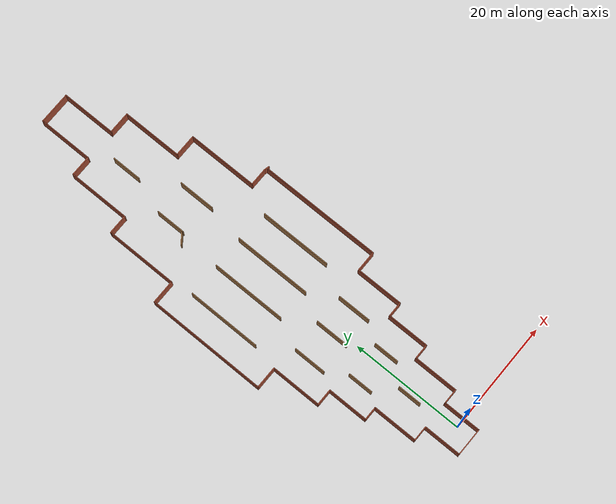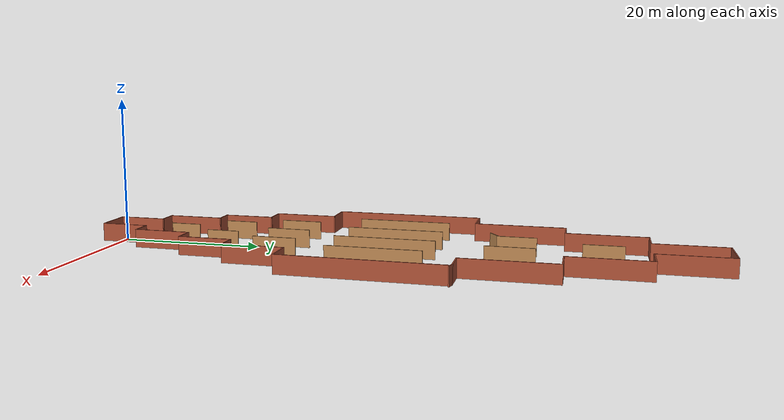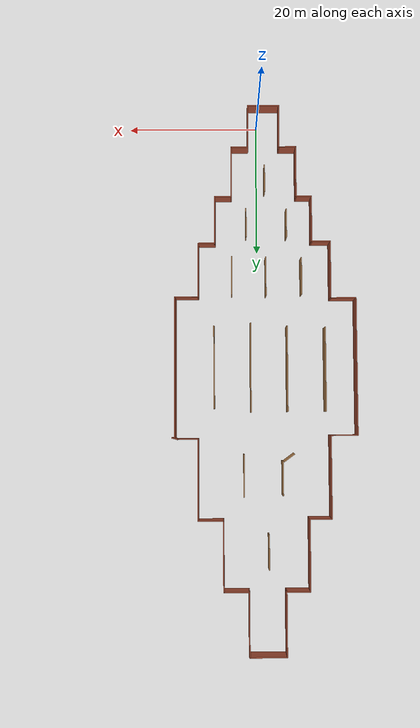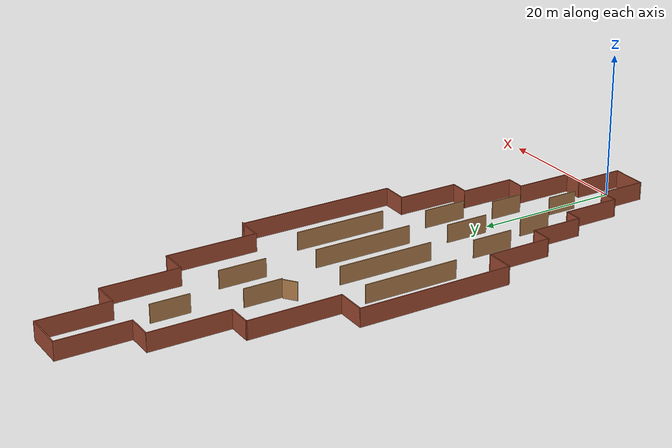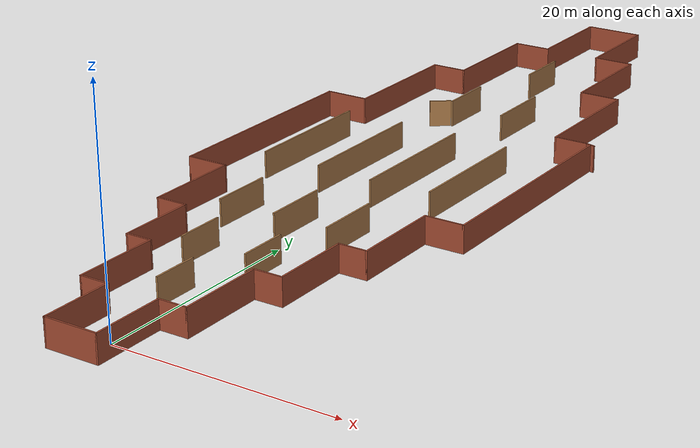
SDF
<?xml version='1.0'?>
<sdf version='1.6'>
  <model name='test_maze'>
    <pose frame=''>-0.979101 39.4339 0 0 -0 0</pose>
    <link name='Wall_102'>
      <collision name='Wall_102_Collision'>
        <geometry>
          <box>
            <size>4.25 0.15 2.5</size>
          </box>
        </geometry>
        <pose frame=''>0 0 1.25 0 -0 0</pose>
      </collision>
      <visual name='Wall_102_Visual'>
        <pose frame=''>0 0 1.25 0 -0 0</pose>
        <geometry>
          <box>
            <size>4.25 0.15 2.5</size>
          </box>
        </geometry>
        <material>
          <script>
            <uri>file://media/materials/scripts/gazebo.material</uri>
            <name>Gazebo/Wood</name>
          </script>
          <ambient>1 1 1 1</ambient>
        </material>
        <meta>
          <layer>0</layer>
        </meta>
      </visual>
      <pose frame=''>-0.206581 -30.7485 0 0 -0 -1.5708</pose>
    </link>
    <link name='Wall_104'>
      <collision name='Wall_104_Collision'>
        <geometry>
          <box>
            <size>4.5 0.15 2.5</size>
          </box>
        </geometry>
        <pose frame=''>0 0 1.25 0 -0 0</pose>
      </collision>
      <visual name='Wall_104_Visual'>
        <pose frame=''>0 0 1.25 0 -0 0</pose>
        <geometry>
          <box>
            <size>4.5 0.15 2.5</size>
          </box>
        </geometry>
        <material>
          <script>
            <uri>file://media/materials/scripts/gazebo.material</uri>
            <name>Gazebo/Wood</name>
          </script>
          <ambient>1 1 1 1</ambient>
        </material>
        <meta>
          <layer>0</layer>
        </meta>
      </visual>
      <pose frame=''>-3.54557 -23.662 0 0 -0 -1.5708</pose>
    </link>
    <link name='Wall_109'>
      <collision name='Wall_109_Collision'>
        <geometry>
          <box>
            <size>4.5 0.15 2.5</size>
          </box>
        </geometry>
        <pose frame=''>0 0 1.25 0 -0 0</pose>
      </collision>
      <visual name='Wall_109_Visual'>
        <pose frame=''>0 0 1.25 0 -0 0</pose>
        <geometry>
          <box>
            <size>4.5 0.15 2.5</size>
          </box>
        </geometry>
        <material>
          <script>
            <uri>file://media/materials/scripts/gazebo.material</uri>
            <name>Gazebo/Wood</name>
          </script>
          <ambient>1 1 1 1</ambient>
        </material>
        <meta>
          <layer>0</layer>
        </meta>
      </visual>
      <pose frame=''>2.71541 -23.7497 0 0 -0 1.5708</pose>
    </link>
    <link name='Wall_111'>
      <collision name='Wall_111_Collision'>
        <geometry>
          <box>
            <size>6 0.15 2.5</size>
          </box>
        </geometry>
        <pose frame=''>0 0 1.25 0 -0 0</pose>
      </collision>
      <visual name='Wall_111_Visual'>
        <pose frame=''>0 0 1.25 0 -0 0</pose>
        <geometry>
          <box>
            <size>6 0.15 2.5</size>
          </box>
        </geometry>
        <material>
          <script>
            <uri>file://media/materials/scripts/gazebo.material</uri>
            <name>Gazebo/Wood</name>
          </script>
          <ambient>1 1 1 1</ambient>
        </material>
        <meta>
          <layer>0</layer>
        </meta>
      </visual>
      <pose frame=''>-0.301502 -15.3165 0 0 -0 -1.5708</pose>
    </link>
    <link name='Wall_114'>
      <collision name='Wall_114_Collision'>
        <geometry>
          <box>
            <size>5.75 0.15 2.5</size>
          </box>
        </geometry>
        <pose frame=''>0 0 1.25 0 -0 0</pose>
      </collision>
      <visual name='Wall_114_Visual'>
        <pose frame=''>0 0 1.25 0 -0 0</pose>
        <geometry>
          <box>
            <size>5.75 0.15 2.5</size>
          </box>
        </geometry>
        <material>
          <script>
            <uri>file://media/materials/scripts/gazebo.material</uri>
            <name>Gazebo/Wood</name>
          </script>
          <ambient>1 1 1 1</ambient>
        </material>
        <meta>
          <layer>0</layer>
        </meta>
      </visual>
      <pose frame=''>-5.8092 -15.3766 0 0 -0 -1.5708</pose>
    </link>
    <link name='Wall_116'>
      <collision name='Wall_116_Collision'>
        <geometry>
          <box>
            <size>6 0.15 2.5</size>
          </box>
        </geometry>
        <pose frame=''>0 0 1.25 0 -0 0</pose>
      </collision>
      <visual name='Wall_116_Visual'>
        <pose frame=''>0 0 1.25 0 -0 0</pose>
        <geometry>
          <box>
            <size>6 0.15 2.5</size>
          </box>
        </geometry>
        <material>
          <script>
            <uri>file://media/materials/scripts/gazebo.material</uri>
            <name>Gazebo/Wood</name>
          </script>
          <ambient>1 1 1 1</ambient>
        </material>
        <meta>
          <layer>0</layer>
        </meta>
      </visual>
      <pose frame=''>4.95745 -15.4576 0 0 -0 -1.5708</pose>
    </link>
    <link name='Wall_118'>
      <collision name='Wall_118_Collision'>
        <geometry>
          <box>
            <size>13.25 0.15 2.5</size>
          </box>
        </geometry>
        <pose frame=''>0 0 1.25 0 -0 0</pose>
      </collision>
      <visual name='Wall_118_Visual'>
        <pose frame=''>0 0 1.25 0 -0 0</pose>
        <geometry>
          <box>
            <size>13.25 0.15 2.5</size>
          </box>
        </geometry>
        <material>
          <script>
            <uri>file://media/materials/scripts/gazebo.material</uri>
            <name>Gazebo/Wood</name>
          </script>
          <ambient>1 1 1 1</ambient>
        </material>
        <meta>
          <layer>0</layer>
        </meta>
      </visual>
      <pose frame=''>-3.51482 -1.01293 0 0 -0 1.5708</pose>
    </link>
    <link name='Wall_120'>
      <collision name='Wall_120_Collision'>
        <geometry>
          <box>
            <size>13 0.15 2.5</size>
          </box>
        </geometry>
        <pose frame=''>0 0 1.25 0 -0 0</pose>
      </collision>
      <visual name='Wall_120_Visual'>
        <pose frame=''>0 0 1.25 0 -0 0</pose>
        <geometry>
          <box>
            <size>13 0.15 2.5</size>
          </box>
        </geometry>
        <material>
          <script>
            <uri>file://media/materials/scripts/gazebo.material</uri>
            <name>Gazebo/Wood</name>
          </script>
          <ambient>1 1 1 1</ambient>
        </material>
        <meta>
          <layer>0</layer>
        </meta>
      </visual>
      <pose frame=''>-9.3589 -0.921485 0 0 -0 1.5708</pose>
    </link>
    <link name='Wall_125'>
      <collision name='Wall_125_Collision'>
        <geometry>
          <box>
            <size>13.75 0.15 2.5</size>
          </box>
        </geometry>
        <pose frame=''>0 0 1.25 0 -0 0</pose>
      </collision>
      <visual name='Wall_125_Visual'>
        <pose frame=''>0 0 1.25 0 -0 0</pose>
        <geometry>
          <box>
            <size>13.75 0.15 2.5</size>
          </box>
        </geometry>
        <material>
          <script>
            <uri>file://media/materials/scripts/gazebo.material</uri>
            <name>Gazebo/Wood</name>
          </script>
          <ambient>1 1 1 1</ambient>
        </material>
        <meta>
          <layer>0</layer>
        </meta>
      </visual>
      <pose frame=''>2.11282 -1.19583 0 0 -0 1.5708</pose>
    </link>
    <link name='Wall_127'>
      <collision name='Wall_127_Collision'>
        <geometry>
          <box>
            <size>12.75 0.15 2.5</size>
          </box>
        </geometry>
        <pose frame=''>0 0 1.25 0 -0 0</pose>
      </collision>
      <visual name='Wall_127_Visual'>
        <pose frame=''>0 0 1.25 0 -0 0</pose>
        <geometry>
          <box>
            <size>12.75 0.15 2.5</size>
          </box>
        </geometry>
        <material>
          <script>
            <uri>file://media/materials/scripts/gazebo.material</uri>
            <name>Gazebo/Wood</name>
          </script>
          <ambient>1 1 1 1</ambient>
        </material>
        <meta>
          <layer>0</layer>
        </meta>
      </visual>
      <pose frame=''>7.74045 -1.26293 0 0 -0 1.5708</pose>
    </link>
    <link name='Wall_34'>
      <collision name='Wall_34_Collision'>
        <geometry>
          <box>
            <size>5 0.15 2.5</size>
          </box>
        </geometry>
        <pose frame=''>0 0 1.25 0 -0 0</pose>
      </collision>
      <visual name='Wall_34_Visual'>
        <pose frame=''>0 0 1.25 0 -0 0</pose>
        <geometry>
          <box>
            <size>5 0.15 2.5</size>
          </box>
        </geometry>
        <material>
          <script>
            <uri>file://media/materials/scripts/gazebo.material</uri>
            <name>Gazebo/Bricks</name>
          </script>
          <ambient>1 1 1 1</ambient>
        </material>
        <meta>
          <layer>0</layer>
        </meta>
      </visual>
      <pose frame=''>-0.068945 -42.275 0 0 -0 0</pose>
    </link>
    <link name='Wall_35'>
      <collision name='Wall_35_Collision'>
        <geometry>
          <box>
            <size>6.75 0.15 2.5</size>
          </box>
        </geometry>
        <pose frame=''>0 0 1.25 0 -0 0</pose>
      </collision>
      <visual name='Wall_35_Visual'>
        <pose frame=''>0 0 1.25 0 -0 0</pose>
        <geometry>
          <box>
            <size>6.75 0.15 2.5</size>
          </box>
        </geometry>
        <material>
          <script>
            <uri>file://media/materials/scripts/gazebo.material</uri>
            <name>Gazebo/Bricks</name>
          </script>
          <ambient>1 1 1 1</ambient>
        </material>
        <meta>
          <layer>0</layer>
        </meta>
      </visual>
      <pose frame=''>2.35606 -38.975 0 0 -0 1.5708</pose>
    </link>
    <link name='Wall_36'>
      <collision name='Wall_36_Collision'>
        <geometry>
          <box>
            <size>2.75 0.15 2.5</size>
          </box>
        </geometry>
        <pose frame=''>0 0 1.25 0 -0 0</pose>
      </collision>
      <visual name='Wall_36_Visual'>
        <pose frame=''>0 0 1.25 0 -0 0</pose>
        <geometry>
          <box>
            <size>2.75 0.15 2.5</size>
          </box>
        </geometry>
        <material>
          <script>
            <uri>file://media/materials/scripts/gazebo.material</uri>
            <name>Gazebo/Bricks</name>
          </script>
          <ambient>1 1 1 1</ambient>
        </material>
        <meta>
          <layer>0</layer>
        </meta>
      </visual>
      <pose frame=''>3.65605 -35.675 0 0 -0 0</pose>
    </link>
    <link name='Wall_37'>
      <collision name='Wall_37_Collision'>
        <geometry>
          <box>
            <size>8 0.15 2.5</size>
          </box>
        </geometry>
        <pose frame=''>0 0 1.25 0 -0 0</pose>
      </collision>
      <visual name='Wall_37_Visual'>
        <pose frame=''>0 0 1.25 0 -0 0</pose>
        <geometry>
          <box>
            <size>8 0.15 2.5</size>
          </box>
        </geometry>
        <material>
          <script>
            <uri>file://media/materials/scripts/gazebo.material</uri>
            <name>Gazebo/Bricks</name>
          </script>
          <ambient>1 1 1 1</ambient>
        </material>
        <meta>
          <layer>0</layer>
        </meta>
      </visual>
      <pose frame=''>4.95606 -31.75 0 0 -0 1.5708</pose>
    </link>
    <link name='Wall_38'>
      <collision name='Wall_38_Collision'>
        <geometry>
          <box>
            <size>2.75 0.15 2.5</size>
          </box>
        </geometry>
        <pose frame=''>0 0 1.25 0 -0 0</pose>
      </collision>
      <visual name='Wall_38_Visual'>
        <pose frame=''>0 0 1.25 0 -0 0</pose>
        <geometry>
          <box>
            <size>2.75 0.15 2.5</size>
          </box>
        </geometry>
        <material>
          <script>
            <uri>file://media/materials/scripts/gazebo.material</uri>
            <name>Gazebo/Bricks</name>
          </script>
          <ambient>1 1 1 1</ambient>
        </material>
        <meta>
          <layer>0</layer>
        </meta>
      </visual>
      <pose frame=''>6.25605 -27.825 0 0 -0 0</pose>
    </link>
    <link name='Wall_39'>
      <collision name='Wall_39_Collision'>
        <geometry>
          <box>
            <size>7.5 0.15 2.5</size>
          </box>
        </geometry>
        <pose frame=''>0 0 1.25 0 -0 0</pose>
      </collision>
      <visual name='Wall_39_Visual'>
        <pose frame=''>0 0 1.25 0 -0 0</pose>
        <geometry>
          <box>
            <size>7.5 0.15 2.5</size>
          </box>
        </geometry>
        <material>
          <script>
            <uri>file://media/materials/scripts/gazebo.material</uri>
            <name>Gazebo/Bricks</name>
          </script>
          <ambient>1 1 1 1</ambient>
        </material>
        <meta>
          <layer>0</layer>
        </meta>
      </visual>
      <pose frame=''>7.55605 -24.15 0 0 -0 1.5708</pose>
    </link>
    <link name='Wall_40'>
      <collision name='Wall_40_Collision'>
        <geometry>
          <box>
            <size>2.75 0.15 2.5</size>
          </box>
        </geometry>
        <pose frame=''>0 0 1.25 0 -0 0</pose>
      </collision>
      <visual name='Wall_40_Visual'>
        <pose frame=''>0 0 1.25 0 -0 0</pose>
        <geometry>
          <box>
            <size>2.75 0.15 2.5</size>
          </box>
        </geometry>
        <material>
          <script>
            <uri>file://media/materials/scripts/gazebo.material</uri>
            <name>Gazebo/Bricks</name>
          </script>
          <ambient>1 1 1 1</ambient>
        </material>
        <meta>
          <layer>0</layer>
        </meta>
      </visual>
      <pose frame=''>8.85605 -20.475 0 0 -0 0</pose>
    </link>
    <link name='Wall_41'>
      <collision name='Wall_41_Collision'>
        <geometry>
          <box>
            <size>8.5 0.15 2.5</size>
          </box>
        </geometry>
        <pose frame=''>0 0 1.25 0 -0 0</pose>
      </collision>
      <visual name='Wall_41_Visual'>
        <pose frame=''>0 0 1.25 0 -0 0</pose>
        <geometry>
          <box>
            <size>8.5 0.15 2.5</size>
          </box>
        </geometry>
        <material>
          <script>
            <uri>file://media/materials/scripts/gazebo.material</uri>
            <name>Gazebo/Bricks</name>
          </script>
          <ambient>1 1 1 1</ambient>
        </material>
        <meta>
          <layer>0</layer>
        </meta>
      </visual>
      <pose frame=''>10.1561 -16.3 0 0 -0 1.5708</pose>
    </link>
    <link name='Wall_42'>
      <collision name='Wall_42_Collision'>
        <geometry>
          <box>
            <size>3.75 0.15 2.5</size>
          </box>
        </geometry>
        <pose frame=''>0 0 1.25 0 -0 0</pose>
      </collision>
      <visual name='Wall_42_Visual'>
        <pose frame=''>0 0 1.25 0 -0 0</pose>
        <geometry>
          <box>
            <size>3.75 0.15 2.5</size>
          </box>
        </geometry>
        <material>
          <script>
            <uri>file://media/materials/scripts/gazebo.material</uri>
            <name>Gazebo/Bricks</name>
          </script>
          <ambient>1 1 1 1</ambient>
        </material>
        <meta>
          <layer>0</layer>
        </meta>
      </visual>
      <pose frame=''>11.9561 -12.125 0 0 -0 0</pose>
    </link>
    <link name='Wall_43'>
      <collision name='Wall_43_Collision'>
        <geometry>
          <box>
            <size>21.75 0.15 2.5</size>
          </box>
        </geometry>
        <pose frame=''>0 0 1.25 0 -0 0</pose>
      </collision>
      <visual name='Wall_43_Visual'>
        <pose frame=''>0 0 1.25 0 -0 0</pose>
        <geometry>
          <box>
            <size>21.75 0.15 2.5</size>
          </box>
        </geometry>
        <material>
          <script>
            <uri>file://media/materials/scripts/gazebo.material</uri>
            <name>Gazebo/Bricks</name>
          </script>
          <ambient>1 1 1 1</ambient>
        </material>
        <meta>
          <layer>0</layer>
        </meta>
      </visual>
      <pose frame=''>13.7561 -1.325 0 0 -0 1.5708</pose>
    </link>
    <link name='Wall_45'>
      <collision name='Wall_45_Collision'>
        <geometry>
          <box>
            <size>6.75 0.15 2.5</size>
          </box>
        </geometry>
        <pose frame=''>0 0 1.25 0 -0 0</pose>
      </collision>
      <visual name='Wall_45_Visual'>
        <pose frame=''>0 0 1.25 0 -0 0</pose>
        <geometry>
          <box>
            <size>6.75 0.15 2.5</size>
          </box>
        </geometry>
        <material>
          <script>
            <uri>file://media/materials/scripts/gazebo.material</uri>
            <name>Gazebo/Bricks</name>
          </script>
          <ambient>1 1 1 1</ambient>
        </material>
        <meta>
          <layer>0</layer>
        </meta>
      </visual>
      <pose frame=''>-2.49395 -38.975 0 0 -0 1.5708</pose>
    </link>
    <link name='Wall_46'>
      <collision name='Wall_46_Collision'>
        <geometry>
          <box>
            <size>2.75 0.15 2.5</size>
          </box>
        </geometry>
        <pose frame=''>0 0 1.25 0 -0 0</pose>
      </collision>
      <visual name='Wall_46_Visual'>
        <pose frame=''>0 0 1.25 0 -0 0</pose>
        <geometry>
          <box>
            <size>2.75 0.15 2.5</size>
          </box>
        </geometry>
        <material>
          <script>
            <uri>file://media/materials/scripts/gazebo.material</uri>
            <name>Gazebo/Bricks</name>
          </script>
          <ambient>1 1 1 1</ambient>
        </material>
        <meta>
          <layer>0</layer>
        </meta>
      </visual>
      <pose frame=''>-3.79394 -35.675 0 0 -0 3.14159</pose>
    </link>
    <link name='Wall_47'>
      <collision name='Wall_47_Collision'>
        <geometry>
          <box>
            <size>8 0.15 2.5</size>
          </box>
        </geometry>
        <pose frame=''>0 0 1.25 0 -0 0</pose>
      </collision>
      <visual name='Wall_47_Visual'>
        <pose frame=''>0 0 1.25 0 -0 0</pose>
        <geometry>
          <box>
            <size>8 0.15 2.5</size>
          </box>
        </geometry>
        <material>
          <script>
            <uri>file://media/materials/scripts/gazebo.material</uri>
            <name>Gazebo/Bricks</name>
          </script>
          <ambient>1 1 1 1</ambient>
        </material>
        <meta>
          <layer>0</layer>
        </meta>
      </visual>
      <pose frame=''>-5.09395 -31.75 0 0 -0 1.5708</pose>
    </link>
    <link name='Wall_48'>
      <collision name='Wall_48_Collision'>
        <geometry>
          <box>
            <size>2.5 0.15 2.5</size>
          </box>
        </geometry>
        <pose frame=''>0 0 1.25 0 -0 0</pose>
      </collision>
      <visual name='Wall_48_Visual'>
        <pose frame=''>0 0 1.25 0 -0 0</pose>
        <geometry>
          <box>
            <size>2.5 0.15 2.5</size>
          </box>
        </geometry>
        <material>
          <script>
            <uri>file://media/materials/scripts/gazebo.material</uri>
            <name>Gazebo/Bricks</name>
          </script>
          <ambient>1 1 1 1</ambient>
        </material>
        <meta>
          <layer>0</layer>
        </meta>
      </visual>
      <pose frame=''>-6.26895 -27.825 0 0 -0 3.14159</pose>
    </link>
    <link name='Wall_49'>
      <collision name='Wall_49_Collision'>
        <geometry>
          <box>
            <size>7.25 0.15 2.5</size>
          </box>
        </geometry>
        <pose frame=''>0 0 1.25 0 -0 0</pose>
      </collision>
      <visual name='Wall_49_Visual'>
        <pose frame=''>0 0 1.25 0 -0 0</pose>
        <geometry>
          <box>
            <size>7.25 0.15 2.5</size>
          </box>
        </geometry>
        <material>
          <script>
            <uri>file://media/materials/scripts/gazebo.material</uri>
            <name>Gazebo/Bricks</name>
          </script>
          <ambient>1 1 1 1</ambient>
        </material>
        <meta>
          <layer>0</layer>
        </meta>
      </visual>
      <pose frame=''>-7.44395 -24.275 0 0 -0 1.5708</pose>
    </link>
    <link name='Wall_50'>
      <collision name='Wall_50_Collision'>
        <geometry>
          <box>
            <size>3 0.15 2.5</size>
          </box>
        </geometry>
        <pose frame=''>0 0 1.25 0 -0 0</pose>
      </collision>
      <visual name='Wall_50_Visual'>
        <pose frame=''>0 0 1.25 0 -0 0</pose>
        <geometry>
          <box>
            <size>3 0.15 2.5</size>
          </box>
        </geometry>
        <material>
          <script>
            <uri>file://media/materials/scripts/gazebo.material</uri>
            <name>Gazebo/Bricks</name>
          </script>
          <ambient>1 1 1 1</ambient>
        </material>
        <meta>
          <layer>0</layer>
        </meta>
      </visual>
      <pose frame=''>-8.86895 -20.725 0 0 -0 3.14159</pose>
    </link>
    <link name='Wall_51'>
      <collision name='Wall_51_Collision'>
        <geometry>
          <box>
            <size>9 0.15 2.5</size>
          </box>
        </geometry>
        <pose frame=''>0 0 1.25 0 -0 0</pose>
      </collision>
      <visual name='Wall_51_Visual'>
        <pose frame=''>0 0 1.25 0 -0 0</pose>
        <geometry>
          <box>
            <size>9 0.15 2.5</size>
          </box>
        </geometry>
        <material>
          <script>
            <uri>file://media/materials/scripts/gazebo.material</uri>
            <name>Gazebo/Bricks</name>
          </script>
          <ambient>1 1 1 1</ambient>
        </material>
        <meta>
          <layer>0</layer>
        </meta>
      </visual>
      <pose frame=''>-10.2939 -16.3 0 0 -0 1.5708</pose>
    </link>
    <link name='Wall_52'>
      <collision name='Wall_52_Collision'>
        <geometry>
          <box>
            <size>4 0.15 2.5</size>
          </box>
        </geometry>
        <pose frame=''>0 0 1.25 0 -0 0</pose>
      </collision>
      <visual name='Wall_52_Visual'>
        <pose frame=''>0 0 1.25 0 -0 0</pose>
        <geometry>
          <box>
            <size>4 0.15 2.5</size>
          </box>
        </geometry>
        <material>
          <script>
            <uri>file://media/materials/scripts/gazebo.material</uri>
            <name>Gazebo/Bricks</name>
          </script>
          <ambient>1 1 1 1</ambient>
        </material>
        <meta>
          <layer>0</layer>
        </meta>
      </visual>
      <pose frame=''>-12.2189 -11.875 0 0 -0 3.14159</pose>
    </link>
    <link name='Wall_53'>
      <collision name='Wall_53_Collision'>
        <geometry>
          <box>
            <size>21.25 0.15 2.5</size>
          </box>
        </geometry>
        <pose frame=''>0 0 1.25 0 -0 0</pose>
      </collision>
      <visual name='Wall_53_Visual'>
        <pose frame=''>0 0 1.25 0 -0 0</pose>
        <geometry>
          <box>
            <size>21.25 0.15 2.5</size>
          </box>
        </geometry>
        <material>
          <script>
            <uri>file://media/materials/scripts/gazebo.material</uri>
            <name>Gazebo/Bricks</name>
          </script>
          <ambient>1 1 1 1</ambient>
        </material>
        <meta>
          <layer>0</layer>
        </meta>
      </visual>
      <pose frame=''>-14.1439 -1.325 0 0 -0 1.5708</pose>
    </link>
    <link name='Wall_54'>
      <collision name='Wall_54_Collision'>
        <geometry>
          <box>
            <size>4.25 0.15 2.5</size>
          </box>
        </geometry>
        <pose frame=''>0 0 1.25 0 -0 0</pose>
      </collision>
      <visual name='Wall_54_Visual'>
        <pose frame=''>0 0 1.25 0 -0 0</pose>
        <geometry>
          <box>
            <size>4.25 0.15 2.5</size>
          </box>
        </geometry>
        <material>
          <script>
            <uri>file://media/materials/scripts/gazebo.material</uri>
            <name>Gazebo/Bricks</name>
          </script>
          <ambient>1 1 1 1</ambient>
        </material>
        <meta>
          <layer>0</layer>
        </meta>
      </visual>
      <pose frame=''>-12.0939 9.225 0 0 -0 0</pose>
    </link>
    <link name='Wall_78'>
      <collision name='Wall_78_Collision'>
        <geometry>
          <box>
            <size>12.75 0.15 2.5</size>
          </box>
        </geometry>
        <pose frame=''>0 0 1.25 0 -0 0</pose>
      </collision>
      <visual name='Wall_78_Visual'>
        <pose frame=''>0 0 1.25 0 -0 0</pose>
        <geometry>
          <box>
            <size>12.75 0.15 2.5</size>
          </box>
        </geometry>
        <material>
          <script>
            <uri>file://media/materials/scripts/gazebo.material</uri>
            <name>Gazebo/Bricks</name>
          </script>
          <ambient>1 1 1 1</ambient>
        </material>
        <meta>
          <layer>0</layer>
        </meta>
      </visual>
      <pose frame=''>-10.0439 15.525 0 0 -0 1.5708</pose>
    </link>
    <link name='Wall_79'>
      <collision name='Wall_79_Collision'>
        <geometry>
          <box>
            <size>3.5 0.15 2.5</size>
          </box>
        </geometry>
        <pose frame=''>0 0 1.25 0 -0 0</pose>
      </collision>
      <visual name='Wall_79_Visual'>
        <pose frame=''>0 0 1.25 0 -0 0</pose>
        <geometry>
          <box>
            <size>3.5 0.15 2.5</size>
          </box>
        </geometry>
        <material>
          <script>
            <uri>file://media/materials/scripts/gazebo.material</uri>
            <name>Gazebo/Bricks</name>
          </script>
          <ambient>1 1 1 1</ambient>
        </material>
        <meta>
          <layer>0</layer>
        </meta>
      </visual>
      <pose frame=''>-8.36895 21.825 0 0 -0 0</pose>
    </link>
    <link name='Wall_80'>
      <collision name='Wall_80_Collision'>
        <geometry>
          <box>
            <size>11 0.15 2.5</size>
          </box>
        </geometry>
        <pose frame=''>0 0 1.25 0 -0 0</pose>
      </collision>
      <visual name='Wall_80_Visual'>
        <pose frame=''>0 0 1.25 0 -0 0</pose>
        <geometry>
          <box>
            <size>11 0.15 2.5</size>
          </box>
        </geometry>
        <material>
          <script>
            <uri>file://media/materials/scripts/gazebo.material</uri>
            <name>Gazebo/Bricks</name>
          </script>
          <ambient>1 1 1 1</ambient>
        </material>
        <meta>
          <layer>0</layer>
        </meta>
      </visual>
      <pose frame=''>-6.69395 27.25 0 0 -0 1.5708</pose>
    </link>
    <link name='Wall_81'>
      <collision name='Wall_81_Collision'>
        <geometry>
          <box>
            <size>3.75 0.15 2.5</size>
          </box>
        </geometry>
        <pose frame=''>0 0 1.25 0 -0 0</pose>
      </collision>
      <visual name='Wall_81_Visual'>
        <pose frame=''>0 0 1.25 0 -0 0</pose>
        <geometry>
          <box>
            <size>3.75 0.15 2.5</size>
          </box>
        </geometry>
        <material>
          <script>
            <uri>file://media/materials/scripts/gazebo.material</uri>
            <name>Gazebo/Bricks</name>
          </script>
          <ambient>1 1 1 1</ambient>
        </material>
        <meta>
          <layer>0</layer>
        </meta>
      </visual>
      <pose frame=''>-4.89395 32.675 0 0 -0 0</pose>
    </link>
    <link name='Wall_82'>
      <collision name='Wall_82_Collision'>
        <geometry>
          <box>
            <size>9.75 0.15 2.5</size>
          </box>
        </geometry>
        <pose frame=''>0 0 1.25 0 -0 0</pose>
      </collision>
      <visual name='Wall_82_Visual'>
        <pose frame=''>0 0 1.25 0 -0 0</pose>
        <geometry>
          <box>
            <size>9.75 0.15 2.5</size>
          </box>
        </geometry>
        <material>
          <script>
            <uri>file://media/materials/scripts/gazebo.material</uri>
            <name>Gazebo/Bricks</name>
          </script>
          <ambient>1 1 1 1</ambient>
        </material>
        <meta>
          <layer>0</layer>
        </meta>
      </visual>
      <pose frame=''>-3.09395 37.475 0 0 -0 1.5708</pose>
    </link>
    <link name='Wall_83'>
      <collision name='Wall_83_Collision'>
        <geometry>
          <box>
            <size>5.75 0.15 2.5</size>
          </box>
        </geometry>
        <pose frame=''>0 0 1.25 0 -0 0</pose>
      </collision>
      <visual name='Wall_83_Visual'>
        <pose frame=''>0 0 1.25 0 -0 0</pose>
        <geometry>
          <box>
            <size>5.75 0.15 2.5</size>
          </box>
        </geometry>
        <material>
          <script>
            <uri>file://media/materials/scripts/gazebo.material</uri>
            <name>Gazebo/Bricks</name>
          </script>
          <ambient>1 1 1 1</ambient>
        </material>
        <meta>
          <layer>0</layer>
        </meta>
      </visual>
      <pose frame=''>-0.293945 42.275 0 0 -0 0</pose>
    </link>
    <link name='Wall_84'>
      <collision name='Wall_84_Collision'>
        <geometry>
          <box>
            <size>9.75 0.15 2.5</size>
          </box>
        </geometry>
        <pose frame=''>0 0 1.25 0 -0 0</pose>
      </collision>
      <visual name='Wall_84_Visual'>
        <pose frame=''>0 0 1.25 0 -0 0</pose>
        <geometry>
          <box>
            <size>9.75 0.15 2.5</size>
          </box>
        </geometry>
        <material>
          <script>
            <uri>file://media/materials/scripts/gazebo.material</uri>
            <name>Gazebo/Bricks</name>
          </script>
          <ambient>1 1 1 1</ambient>
        </material>
        <meta>
          <layer>0</layer>
        </meta>
      </visual>
      <pose frame=''>2.50605 37.475 0 0 -0 -1.5708</pose>
    </link>
    <link name='Wall_85'>
      <collision name='Wall_85_Collision'>
        <geometry>
          <box>
            <size>4 0.15 2.5</size>
          </box>
        </geometry>
        <pose frame=''>0 0 1.25 0 -0 0</pose>
      </collision>
      <visual name='Wall_85_Visual'>
        <pose frame=''>0 0 1.25 0 -0 0</pose>
        <geometry>
          <box>
            <size>4 0.15 2.5</size>
          </box>
        </geometry>
        <material>
          <script>
            <uri>file://media/materials/scripts/gazebo.material</uri>
            <name>Gazebo/Bricks</name>
          </script>
          <ambient>1 1 1 1</ambient>
        </material>
        <meta>
          <layer>0</layer>
        </meta>
      </visual>
      <pose frame=''>4.43105 32.675 0 0 -0 0</pose>
    </link>
    <link name='Wall_86'>
      <collision name='Wall_86_Collision'>
        <geometry>
          <box>
            <size>10.75 0.15 2.5</size>
          </box>
        </geometry>
        <pose frame=''>0 0 1.25 0 -0 0</pose>
      </collision>
      <visual name='Wall_86_Visual'>
        <pose frame=''>0 0 1.25 0 -0 0</pose>
        <geometry>
          <box>
            <size>10.75 0.15 2.5</size>
          </box>
        </geometry>
        <material>
          <script>
            <uri>file://media/materials/scripts/gazebo.material</uri>
            <name>Gazebo/Bricks</name>
          </script>
          <ambient>1 1 1 1</ambient>
        </material>
        <meta>
          <layer>0</layer>
        </meta>
      </visual>
      <pose frame=''>6.35605 27.375 0 0 -0 -1.5708</pose>
    </link>
    <link name='Wall_87'>
      <collision name='Wall_87_Collision'>
        <geometry>
          <box>
            <size>4 0.15 2.5</size>
          </box>
        </geometry>
        <pose frame=''>0 0 1.25 0 -0 0</pose>
      </collision>
      <visual name='Wall_87_Visual'>
        <pose frame=''>0 0 1.25 0 -0 0</pose>
        <geometry>
          <box>
            <size>4 0.15 2.5</size>
          </box>
        </geometry>
        <material>
          <script>
            <uri>file://media/materials/scripts/gazebo.material</uri>
            <name>Gazebo/Bricks</name>
          </script>
          <ambient>1 1 1 1</ambient>
        </material>
        <meta>
          <layer>0</layer>
        </meta>
      </visual>
      <pose frame=''>8.28105 22.075 0 0 -0 0</pose>
    </link>
    <link name='Wall_88'>
      <collision name='Wall_88_Collision'>
        <geometry>
          <box>
            <size>12.5 0.15 2.5</size>
          </box>
        </geometry>
        <pose frame=''>0 0 1.25 0 -0 0</pose>
      </collision>
      <visual name='Wall_88_Visual'>
        <pose frame=''>0 0 1.25 0 -0 0</pose>
        <geometry>
          <box>
            <size>12.5 0.15 2.5</size>
          </box>
        </geometry>
        <material>
          <script>
            <uri>file://media/materials/scripts/gazebo.material</uri>
            <name>Gazebo/Bricks</name>
          </script>
          <ambient>1 1 1 1</ambient>
        </material>
        <meta>
          <layer>0</layer>
        </meta>
      </visual>
      <pose frame=''>10.2061 15.9 0 0 -0 -1.5708</pose>
    </link>
    <link name='Wall_89'>
      <collision name='Wall_89_Collision'>
        <geometry>
          <box>
            <size>3.25 0.15 2.5</size>
          </box>
        </geometry>
        <pose frame=''>0 0 1.25 0 -0 0</pose>
      </collision>
      <visual name='Wall_89_Visual'>
        <pose frame=''>0 0 1.25 0 -0 0</pose>
        <geometry>
          <box>
            <size>3.25 0.15 2.5</size>
          </box>
        </geometry>
        <material>
          <script>
            <uri>file://media/materials/scripts/gazebo.material</uri>
            <name>Gazebo/Bricks</name>
          </script>
          <ambient>1 1 1 1</ambient>
        </material>
        <meta>
          <layer>0</layer>
        </meta>
      </visual>
      <pose frame=''>11.7561 9.725 0 0 -0 0</pose>
    </link>
    <link name='Wall_90'>
      <collision name='Wall_90_Collision'>
        <geometry>
          <box>
            <size>1 0.15 2.5</size>
          </box>
        </geometry>
        <pose frame=''>0 0 1.25 0 -0 0</pose>
      </collision>
      <visual name='Wall_90_Visual'>
        <pose frame=''>0 0 1.25 0 -0 0</pose>
        <geometry>
          <box>
            <size>1 0.15 2.5</size>
          </box>
        </geometry>
        <material>
          <script>
            <uri>file://media/materials/scripts/gazebo.material</uri>
            <name>Gazebo/Bricks</name>
          </script>
          <ambient>1 1 1 1</ambient>
        </material>
        <meta>
          <layer>0</layer>
        </meta>
      </visual>
      <pose frame=''>13.7166 9.615 0 0 -0 -0.261799</pose>
    </link>
    <link name='Wall_93'>
      <collision name='Wall_93_Collision'>
        <geometry>
          <box>
            <size>5.25 0.15 2.5</size>
          </box>
        </geometry>
        <pose frame=''>0 0 1.25 0 -0 0</pose>
      </collision>
      <visual name='Wall_93_Visual'>
        <pose frame=''>0 0 1.25 0 -0 0</pose>
        <geometry>
          <box>
            <size>5.25 0.15 2.5</size>
          </box>
        </geometry>
        <material>
          <script>
            <uri>file://media/materials/scripts/gazebo.material</uri>
            <name>Gazebo/Wood</name>
          </script>
          <ambient>1 1 1 1</ambient>
        </material>
        <meta>
          <layer>0</layer>
        </meta>
      </visual>
      <pose frame=''>-0.522049 26.8078 0 0 -0 -1.5708</pose>
    </link>
    <link name='Wall_95'>
      <collision name='Wall_95_Collision'>
        <geometry>
          <box>
            <size>5.25 0.15 2.5</size>
          </box>
        </geometry>
        <pose frame=''>0 0 1.25 0 -0 0</pose>
      </collision>
      <visual name='Wall_95_Visual'>
        <pose frame=''>0 0 1.25 0 -0 0</pose>
        <geometry>
          <box>
            <size>5.25 0.15 2.5</size>
          </box>
        </geometry>
        <material>
          <script>
            <uri>file://media/materials/scripts/gazebo.material</uri>
            <name>Gazebo/Wood</name>
          </script>
          <ambient>1 1 1 1</ambient>
        </material>
        <meta>
          <layer>0</layer>
        </meta>
      </visual>
      <pose frame=''>-2.70639 15.697 0 0 -0 -1.5708</pose>
    </link>
    <link name='Wall_96'>
      <collision name='Wall_96_Collision'>
        <geometry>
          <box>
            <size>2.0055 0.15 2.5</size>
          </box>
        </geometry>
        <pose frame=''>0 0 1.25 0 -0 0</pose>
      </collision>
      <visual name='Wall_96_Visual'>
        <pose frame=''>0 0 1.25 0 -0 0</pose>
        <geometry>
          <box>
            <size>2.0055 0.15 2.5</size>
          </box>
        </geometry>
        <material>
          <script>
            <uri>file://media/materials/scripts/gazebo.material</uri>
            <name>Gazebo/Wood</name>
          </script>
          <ambient>1 1 1 1</ambient>
        </material>
        <meta>
          <layer>0</layer>
        </meta>
      </visual>
      <pose frame=''>-3.70205 12.5965 0 0 -0 -2.5063</pose>
    </link>
    <link name='Wall_99'>
      <collision name='Wall_99_Collision'>
        <geometry>
          <box>
            <size>6.5 0.15 2.5</size>
          </box>
        </geometry>
        <pose frame=''>0 0 1.25 0 -0 0</pose>
      </collision>
      <visual name='Wall_99_Visual'>
        <pose frame=''>0 0 1.25 0 -0 0</pose>
        <geometry>
          <box>
            <size>6.5 0.15 2.5</size>
          </box>
        </geometry>
        <material>
          <script>
            <uri>file://media/materials/scripts/gazebo.material</uri>
            <name>Gazebo/Wood</name>
          </script>
          <ambient>1 1 1 1</ambient>
        </material>
        <meta>
          <layer>0</layer>
        </meta>
      </visual>
      <pose frame=''>3.20533 15.3209 0 0 -0 -1.5708</pose>
    </link>
    <static>1</static>
  </model>
</sdf>
